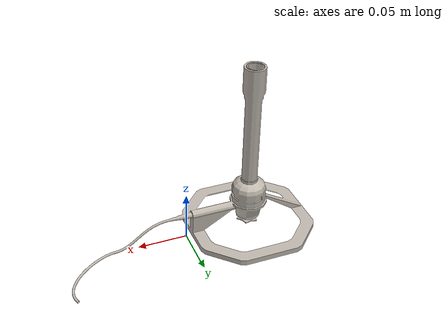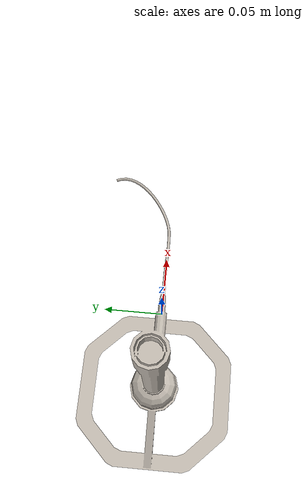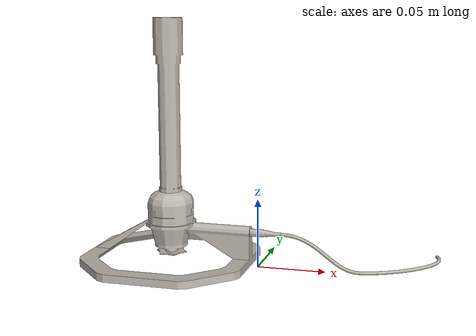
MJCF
<?xml version="1.0" ?>
<mujoco model="5185e41b2beb48fa8f15ca3707f43e10">
  <asset>
    <texture type="2d" name="Bunsen_Burner_Mat" file="Bunsen_Burner_Mat.png"/>
    <material name="Bunsen_Burner_Mat" texture="Bunsen_Burner_Mat" specular="0.4000000000000001" shininess="0.001"/>
    <mesh file="5185e41b2beb48fa8f15ca3707f43e10/5185e41b2beb48fa8f15ca3707f43e10.obj" scale="1.2288887159341808 1.2288887159341808 1.2288887159341808"/>
    <mesh file="5185e41b2beb48fa8f15ca3707f43e10/5185e41b2beb48fa8f15ca3707f43e10_collision_0.obj" scale="1.2288887159341808 1.2288887159341808 1.2288887159341808"/>
    <mesh file="5185e41b2beb48fa8f15ca3707f43e10/5185e41b2beb48fa8f15ca3707f43e10_collision_1.obj" scale="1.2288887159341808 1.2288887159341808 1.2288887159341808"/>
    <mesh file="5185e41b2beb48fa8f15ca3707f43e10/5185e41b2beb48fa8f15ca3707f43e10_collision_2.obj" scale="1.2288887159341808 1.2288887159341808 1.2288887159341808"/>
    <mesh file="5185e41b2beb48fa8f15ca3707f43e10/5185e41b2beb48fa8f15ca3707f43e10_collision_3.obj" scale="1.2288887159341808 1.2288887159341808 1.2288887159341808"/>
    <mesh file="5185e41b2beb48fa8f15ca3707f43e10/5185e41b2beb48fa8f15ca3707f43e10_collision_4.obj" scale="1.2288887159341808 1.2288887159341808 1.2288887159341808"/>
    <mesh file="5185e41b2beb48fa8f15ca3707f43e10/5185e41b2beb48fa8f15ca3707f43e10_collision_5.obj" scale="1.2288887159341808 1.2288887159341808 1.2288887159341808"/>
    <mesh file="5185e41b2beb48fa8f15ca3707f43e10/5185e41b2beb48fa8f15ca3707f43e10_collision_6.obj" scale="1.2288887159341808 1.2288887159341808 1.2288887159341808"/>
    <mesh file="5185e41b2beb48fa8f15ca3707f43e10/5185e41b2beb48fa8f15ca3707f43e10_collision_7.obj" scale="1.2288887159341808 1.2288887159341808 1.2288887159341808"/>
    <mesh file="5185e41b2beb48fa8f15ca3707f43e10/5185e41b2beb48fa8f15ca3707f43e10_collision_8.obj" scale="1.2288887159341808 1.2288887159341808 1.2288887159341808"/>
    <mesh file="5185e41b2beb48fa8f15ca3707f43e10/5185e41b2beb48fa8f15ca3707f43e10_collision_9.obj" scale="1.2288887159341808 1.2288887159341808 1.2288887159341808"/>
    <mesh file="5185e41b2beb48fa8f15ca3707f43e10/5185e41b2beb48fa8f15ca3707f43e10_collision_10.obj" scale="1.2288887159341808 1.2288887159341808 1.2288887159341808"/>
    <mesh file="5185e41b2beb48fa8f15ca3707f43e10/5185e41b2beb48fa8f15ca3707f43e10_collision_11.obj" scale="1.2288887159341808 1.2288887159341808 1.2288887159341808"/>
    <mesh file="5185e41b2beb48fa8f15ca3707f43e10/5185e41b2beb48fa8f15ca3707f43e10_collision_12.obj" scale="1.2288887159341808 1.2288887159341808 1.2288887159341808"/>
    <mesh file="5185e41b2beb48fa8f15ca3707f43e10/5185e41b2beb48fa8f15ca3707f43e10_collision_13.obj" scale="1.2288887159341808 1.2288887159341808 1.2288887159341808"/>
    <mesh file="5185e41b2beb48fa8f15ca3707f43e10/5185e41b2beb48fa8f15ca3707f43e10_collision_14.obj" scale="1.2288887159341808 1.2288887159341808 1.2288887159341808"/>
    <mesh file="5185e41b2beb48fa8f15ca3707f43e10/5185e41b2beb48fa8f15ca3707f43e10_collision_15.obj" scale="1.2288887159341808 1.2288887159341808 1.2288887159341808"/>
    <mesh file="5185e41b2beb48fa8f15ca3707f43e10/5185e41b2beb48fa8f15ca3707f43e10_collision_16.obj" scale="1.2288887159341808 1.2288887159341808 1.2288887159341808"/>
  </asset>
  <worldbody>
    <body name="5185e41b2beb48fa8f15ca3707f43e10">
      <inertial pos="0 0 0.0900" mass="0.02" diaginertia="0.000079 0.000164 0.000135"/>
      <geom material="Bunsen_Burner_Mat" mesh="5185e41b2beb48fa8f15ca3707f43e10" class="visual"/>
      <geom mesh="5185e41b2beb48fa8f15ca3707f43e10_collision_0" rgba="0.4712947679023377 0.3133135637936685 0.17802994142291362 1" class="collision"/>
      <geom mesh="5185e41b2beb48fa8f15ca3707f43e10_collision_1" rgba="0.02411885399570668 0.42319183565654883 0.9201642790196534 1" class="collision"/>
      <geom mesh="5185e41b2beb48fa8f15ca3707f43e10_collision_2" rgba="0.2115362774112558 0.5903590588148985 0.8538173616800855 1" class="collision"/>
      <geom mesh="5185e41b2beb48fa8f15ca3707f43e10_collision_3" rgba="0.015559441591248668 0.07111161990864134 0.6036805461104028 1" class="collision"/>
      <geom mesh="5185e41b2beb48fa8f15ca3707f43e10_collision_4" rgba="0.6206561878546937 0.9849198078085246 0.08051771512520978 1" class="collision"/>
      <geom mesh="5185e41b2beb48fa8f15ca3707f43e10_collision_5" rgba="0.9053245165379799 0.5197381941997725 0.9391700416201346 1" class="collision"/>
      <geom mesh="5185e41b2beb48fa8f15ca3707f43e10_collision_6" rgba="0.832066561339528 0.179781939037151 0.9243955960015162 1" class="collision"/>
      <geom mesh="5185e41b2beb48fa8f15ca3707f43e10_collision_7" rgba="0.014804690394090936 0.5103880508005509 0.8190758926197866 1" class="collision"/>
      <geom mesh="5185e41b2beb48fa8f15ca3707f43e10_collision_8" rgba="0.3147930916215337 0.01129491809037797 0.36291906585908273 1" class="collision"/>
      <geom mesh="5185e41b2beb48fa8f15ca3707f43e10_collision_9" rgba="0.7232196697728256 0.3658458874486378 0.5907652570034856 1" class="collision"/>
      <geom mesh="5185e41b2beb48fa8f15ca3707f43e10_collision_10" rgba="0.5194300049319248 0.09779534662105072 0.09428217897817648 1" class="collision"/>
      <geom mesh="5185e41b2beb48fa8f15ca3707f43e10_collision_11" rgba="0.14102532715135918 0.7709233199995368 0.5834420464122247 1" class="collision"/>
      <geom mesh="5185e41b2beb48fa8f15ca3707f43e10_collision_12" rgba="0.17361800232687663 0.7350365526534682 0.7596860294924839 1" class="collision"/>
      <geom mesh="5185e41b2beb48fa8f15ca3707f43e10_collision_13" rgba="0.4061712246564214 0.7450694620525816 0.21136861636805027 1" class="collision"/>
      <geom mesh="5185e41b2beb48fa8f15ca3707f43e10_collision_14" rgba="0.8654622618614108 0.7668249586445404 0.15571129611690637 1" class="collision"/>
      <geom mesh="5185e41b2beb48fa8f15ca3707f43e10_collision_15" rgba="0.5275659742352906 0.9901519189451926 0.9025300685181202 1" class="collision"/>
      <geom mesh="5185e41b2beb48fa8f15ca3707f43e10_collision_16" rgba="0.021288957790184915 0.636552186695925 0.6133428893530323 1" class="collision"/>
      <site class="grasppoint" pos="0 0 0.1440"/>
      <site class="grasppoint" pos="0 0 0.1575"/>
      <site class="grasppoint" pos="0 0 0.1710"/>
    </body>
  </worldbody>
  <compiler boundmass="0.015" boundinertia="1e-05" angle="radian"/>
  <default>
    <default class="visual">
      <geom group="2" type="mesh" contype="0" conaffinity="0" density="50"/>
    </default>
    <default class="collision">
      <geom group="3" type="mesh" density="50" friction="1.5 0.1 0.1" solimp="0.9 0.95 0.001" solref="0.02 1"/>
    </default>
    <default class="grasppoint">
      <site type="sphere" size="0.005" group="4" rgba="0 0 1 1"/>
    </default>
  </default>
</mujoco>
